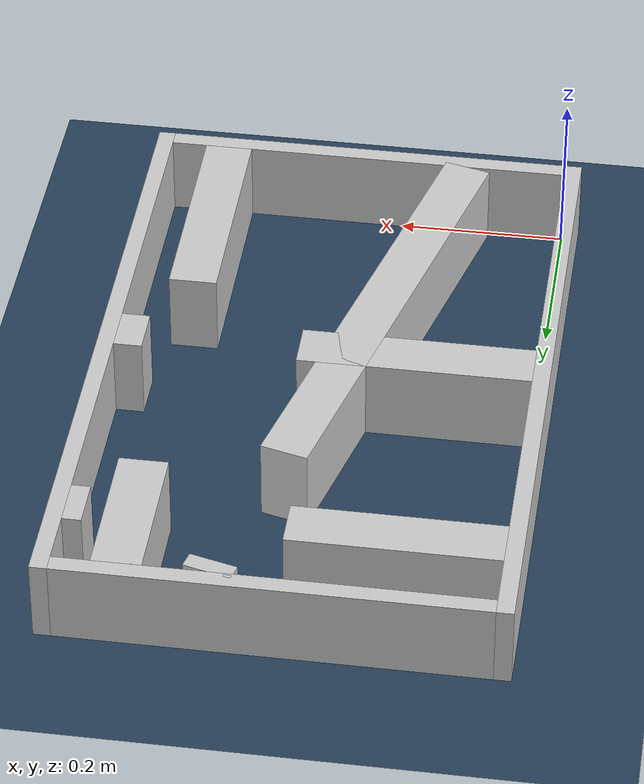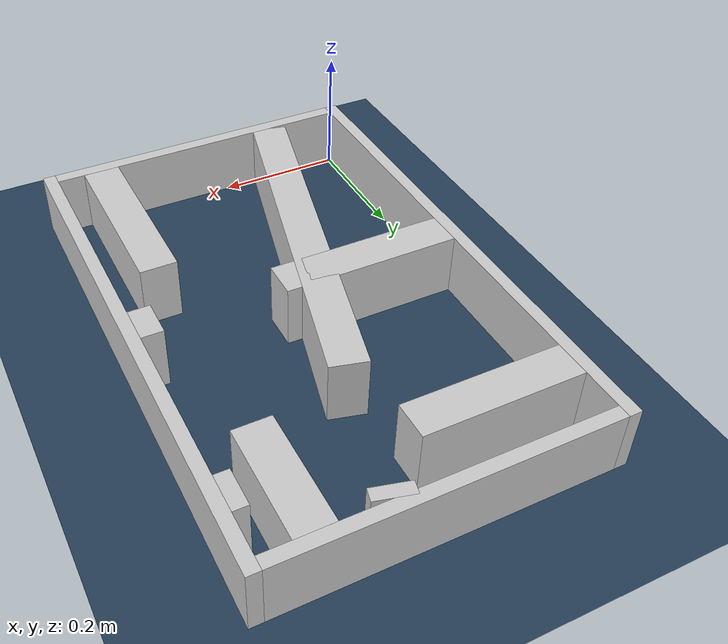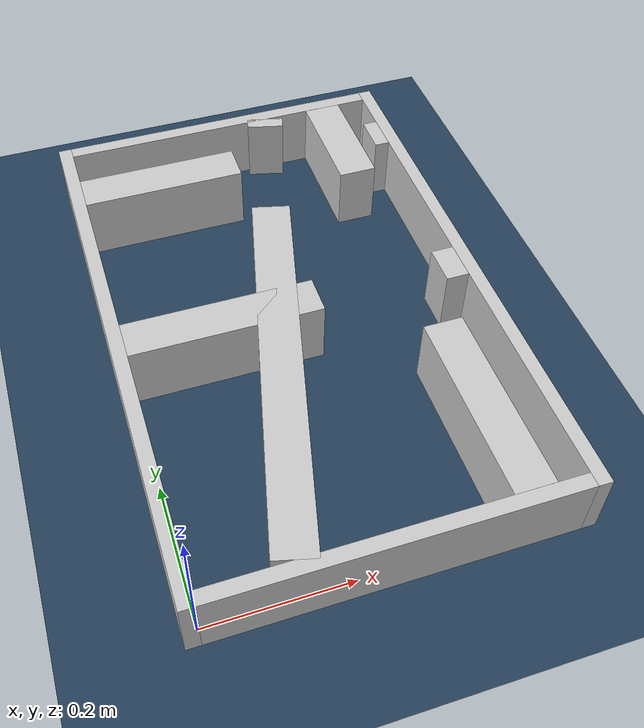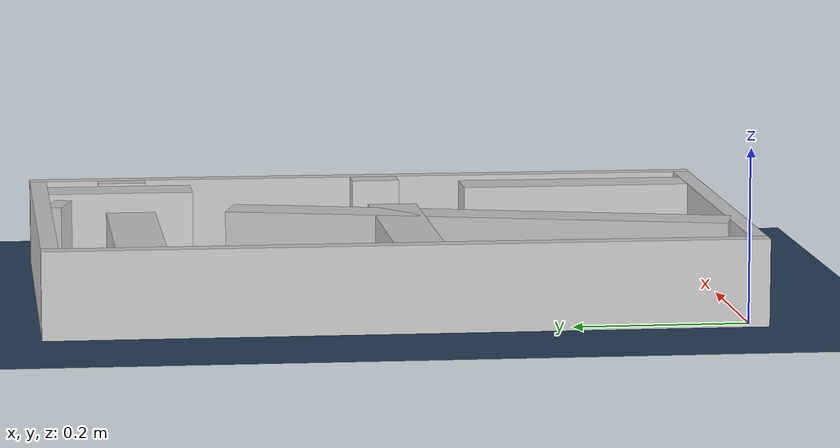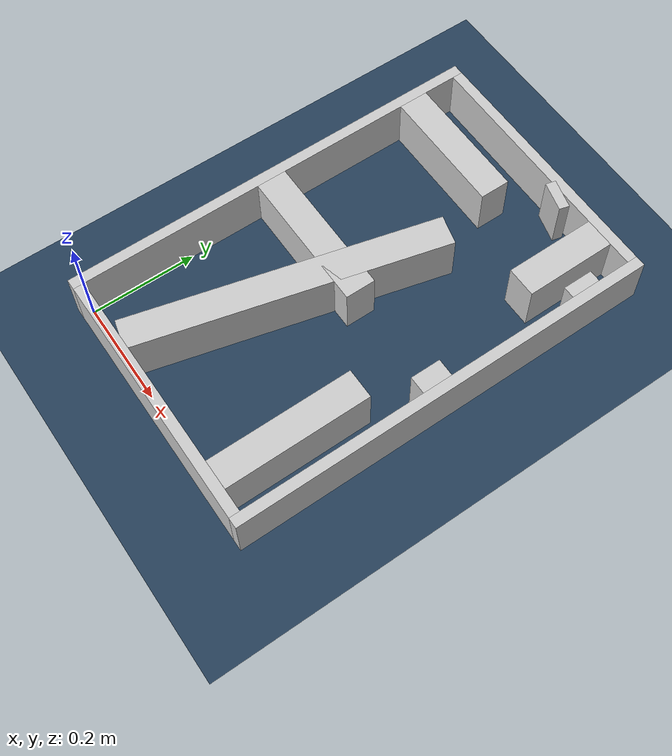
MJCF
<?xml version="1.0" ?>
<mujoco model="generated_real_template">
  <compiler angle="degree"/>
  <option timestep="0.002" integrator="implicitfast" iterations="100" cone="elliptic"/>
  <default>
    <geom density="1"/>
  </default>
  <asset>
    <texture builtin="gradient" height="3072" rgb1="0.3 0.5 0.7" rgb2="0 0 0" type="skybox" width="512"/>
    <texture builtin="checker" height="300" mark="edge" markrgb="0.8 0.8 0.8" name="groundplane" rgb1="0.2 0.3 0.4" rgb2="0.1 0.2 0.3" type="2d" width="300"/>
    <material name="groundplane" reflectance="0.2" texrepeat="5 5" texture="groundplane" texuniform="true"/>
  </asset>
  <worldbody>
    <light dir="0 0 -1" directional="true" pos="0 0 1.5"/>
    <geom name="floor" type="plane" condim="4" friction="0.5 0.005 0.001" material="groundplane" size="0 0 0.05"/>
    <body name="walls">
      <geom name="wall_boundary_left" type="box" condim="4" friction="1.0 0.005 0.0001" rgba="0.8 0.8 0.8 1" pos="-0.010000 0.387500 0.050000" euler="0 0 0.000000" size="0.010000 0.407500 0.050000"/>
      <geom name="wall_boundary_right" type="box" condim="4" friction="1.0 0.005 0.0001" rgba="0.8 0.8 0.8 1" pos="0.500000 0.387500 0.050000" euler="0 0 0.000000" size="0.010000 0.407500 0.050000"/>
      <geom name="wall_boundary_bottom" type="box" condim="4" friction="1.0 0.005 0.0001" rgba="0.8 0.8 0.8 1" pos="0.245000 -0.010000 0.050000" euler="0 0 0.000000" size="0.245000 0.010000 0.050000"/>
      <geom name="wall_boundary_top" type="box" condim="4" friction="1.0 0.005 0.0001" rgba="0.8 0.8 0.8 1" pos="0.245000 0.785000 0.050000" euler="0 0 0.000000" size="0.245000 0.010000 0.050000"/>
      <geom name="wall_inner_1_1" type="box" condim="4" friction="1.0 0.005 0.0001" rgba="0.8 0.8 0.8 1" pos="0.418527 0.136883 0.050000" euler="0 0 90.115896" size="0.136884 0.028500 0.050000"/>
      <geom name="wall_inner_1_2" type="box" condim="4" friction="1.0 0.005 0.0001" rgba="0.8 0.8 0.8 1" pos="0.417411 0.688739 0.050000" euler="0 0 90.115896" size="0.086261 0.028500 0.050000"/>
      <geom name="wall_inner_2_1" type="box" condim="4" friction="1.0 0.005 0.0001" rgba="0.8 0.8 0.8 1" pos="0.121678 0.683795 0.050000" euler="0 0 0.000000" size="0.121678 0.028500 0.050000"/>
      <geom name="wall_inner_2_2" type="box" condim="4" friction="1.0 0.005 0.0001" rgba="0.8 0.8 0.8 1" pos="0.478907 0.683795 0.050000" euler="0 0 0.000000" size="0.011093 0.028500 0.050000"/>
      <geom name="wall_inner_3_1" type="box" condim="4" friction="1.0 0.005 0.0001" rgba="0.8 0.8 0.8 1" pos="0.314973 0.765557 0.050000" euler="0 0 -104.310298" size="0.009745 0.028500 0.050000"/>
      <geom name="wall_inner_3_2" type="box" condim="4" friction="1.0 0.005 0.0001" rgba="0.8 0.8 0.8 1" pos="0.191998 0.283468 0.050000" euler="0 0 -104.310298" size="0.292546 0.028500 0.050000"/>
      <geom name="wall_inner_4_1" type="box" condim="4" friction="1.0 0.005 0.0001" rgba="0.8 0.8 0.8 1" pos="0.137329 0.374493 0.050000" euler="0 0 0.000000" size="0.137329 0.028500 0.050000"/>
      <geom name="wall_inner_4_2" type="box" condim="4" friction="1.0 0.005 0.0001" rgba="0.8 0.8 0.8 1" pos="0.473246 0.374493 0.050000" euler="0 0 0.000000" size="0.016754 0.028500 0.050000"/>
    </body>
  </worldbody>
</mujoco>
